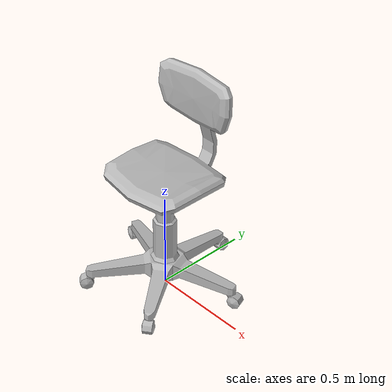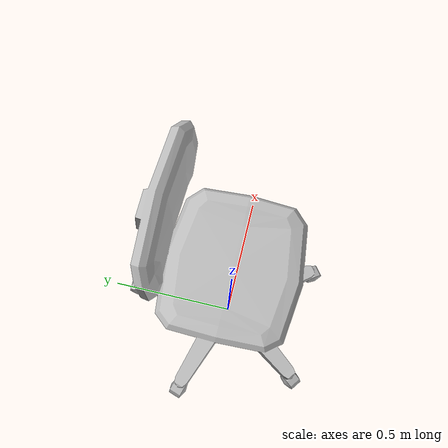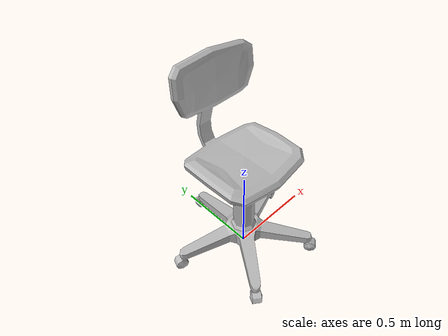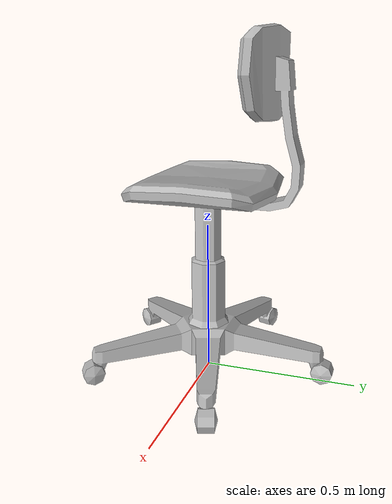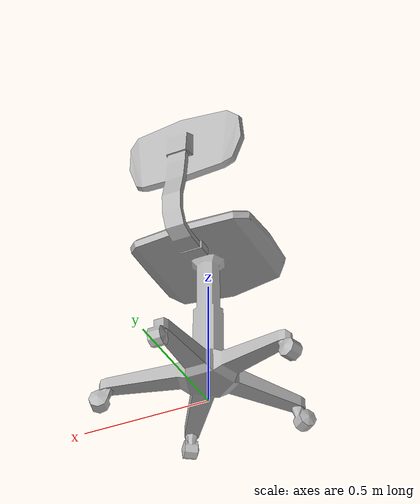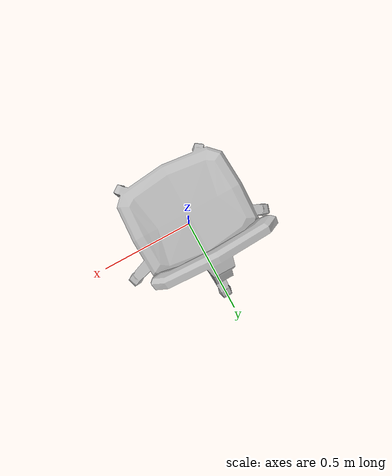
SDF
<?xml version="1.0" ?>
<sdf version="1.6">
  <model name="office_chair">
    <static>true</static>
    <link name="link">
      <collision name="collision">
        <pose>0.001581 0.000308 0.569888 0 0 0</pose>
        <geometry>
          <cylinder>
            <radius>0.43</radius>
            <length>1.14</length>
          </cylinder>
        </geometry>
      </collision>
      <visual name="visual">
        <geometry>
          <mesh>
            <uri>model://office_chair/meshes/office_chair.dae</uri>
            <scale>1.4 1.4 1.4</scale>
          </mesh>
        </geometry>
      </visual>
    </link>
  </model>
</sdf>
